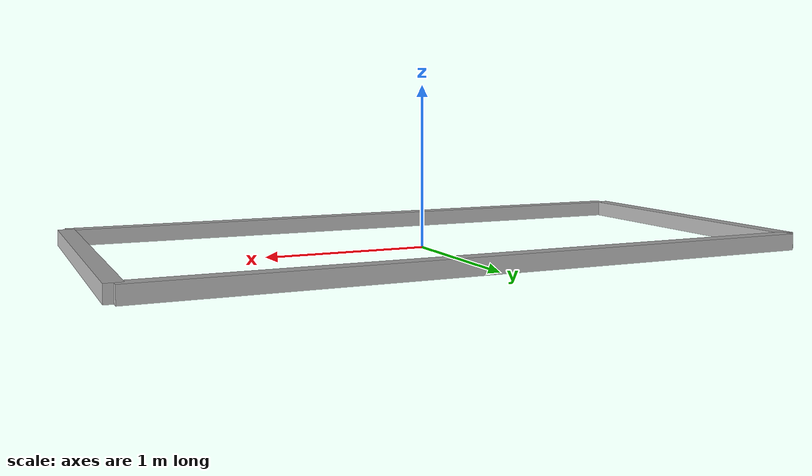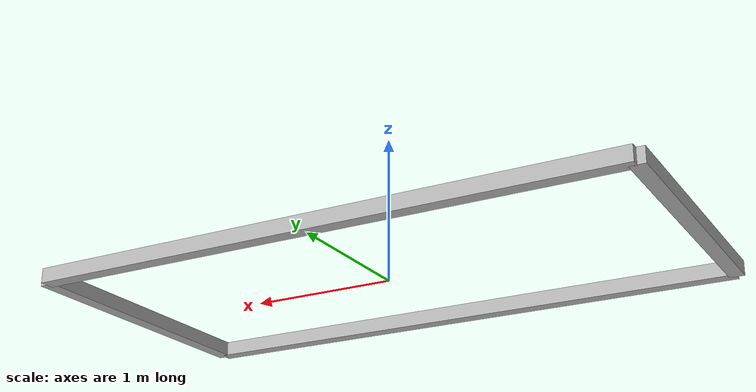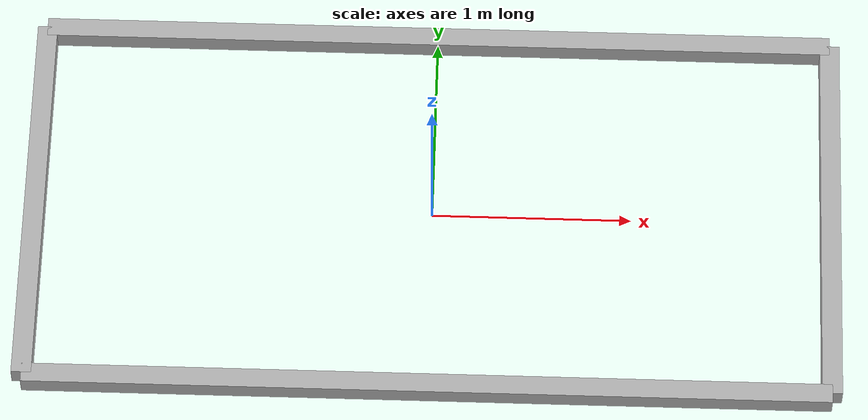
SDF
<?xml version="1.0" ?>
<sdf version="1.5">
  <model name="turtlebot3_world">
    <static>1</static>

    <!-- Öndeki 4 m'lik duvar -->
    <link name="wall_front">
      <pose>0 1 0.05 0 0 0</pose>
      <collision name="col_front">
        <geometry>
          <box><size>4.0 0.1 0.1</size></box>
        </geometry>
      </collision>
      <visual name="vis_front">
        <geometry>
          <box><size>4.0 0.1 0.1</size></box>
        </geometry>
        <material>
          <ambient>0.7 0.7 0.7 1</ambient>
          <diffuse>0.7 0.7 0.7 1</diffuse>
        </material>
      </visual>
    </link>

    <!-- Arkadaki 4 m'lik duvar -->
    <link name="wall_back">
      <pose>0 -1 0.05 0 0 0</pose>
      <collision name="col_back">
        <geometry>
          <box><size>4.0 0.1 0.1</size></box>
        </geometry>
      </collision>
      <visual name="vis_back">
        <geometry>
          <box><size>4.0 0.1 0.1</size></box>
        </geometry>
        <material>
          <ambient>0.7 0.7 0.7 1</ambient>
          <diffuse>0.7 0.7 0.7 1</diffuse>
        </material>
      </visual>
    </link>

    <!-- Sağdaki 2 m'lik duvar -->
    <link name="wall_right">
      <pose>2 0 0.05 0 0 1.5708</pose>
      <collision name="col_right">
        <geometry>
          <box><size>2.0 0.1 0.1</size></box>
        </geometry>
      </collision>
      <visual name="vis_right">
        <geometry>
          <box><size>2.0 0.1 0.1</size></box>
        </geometry>
        <material>
          <ambient>0.7 0.7 0.7 1</ambient>
          <diffuse>0.7 0.7 0.7 1</diffuse>
        </material>
      </visual>
    </link>

    <!-- Soldaki 2 m'lik duvar -->
    <link name="wall_left">
      <pose>-2 0 0.05 0 0 1.5708</pose>
      <collision name="col_left">
        <geometry>
          <box><size>2.0 0.1 0.1</size></box>
        </geometry>
      </collision>
      <visual name="vis_left">
        <geometry>
          <box><size>2.0 0.1 0.1</size></box>
        </geometry>
        <material>
          <ambient>0.7 0.7 0.7 1</ambient>
          <diffuse>0.7 0.7 0.7 1</diffuse>
        </material>
      </visual>
    </link>

  </model>
</sdf>
